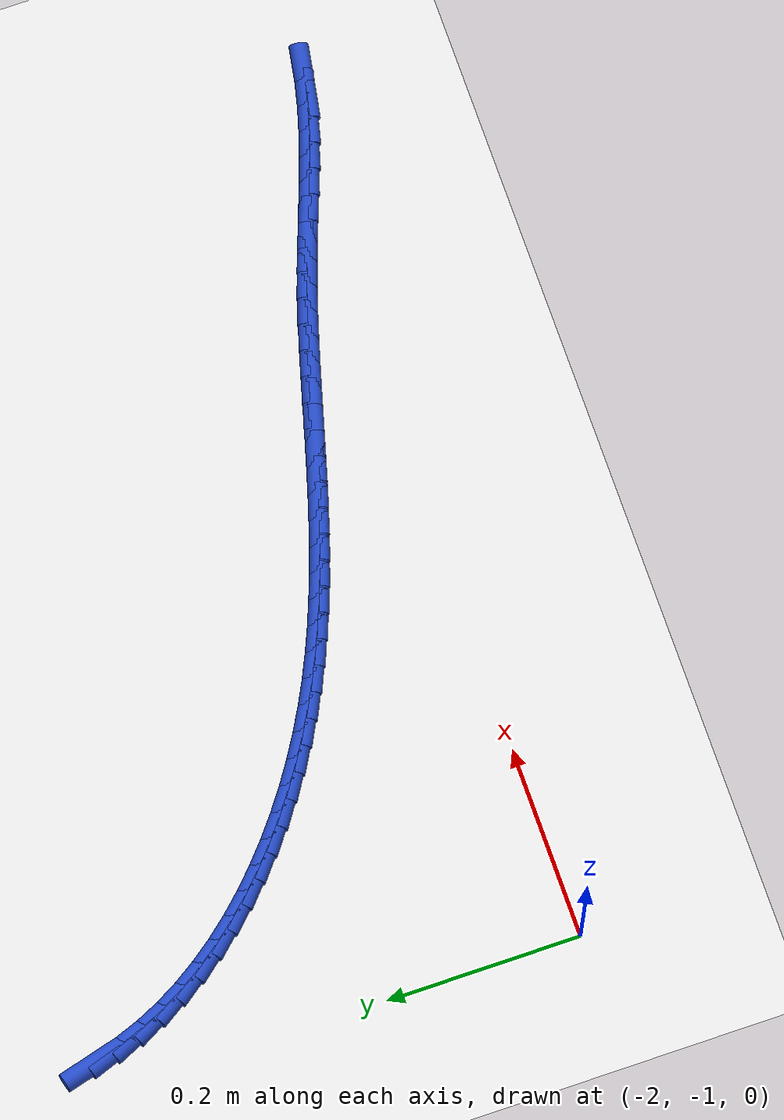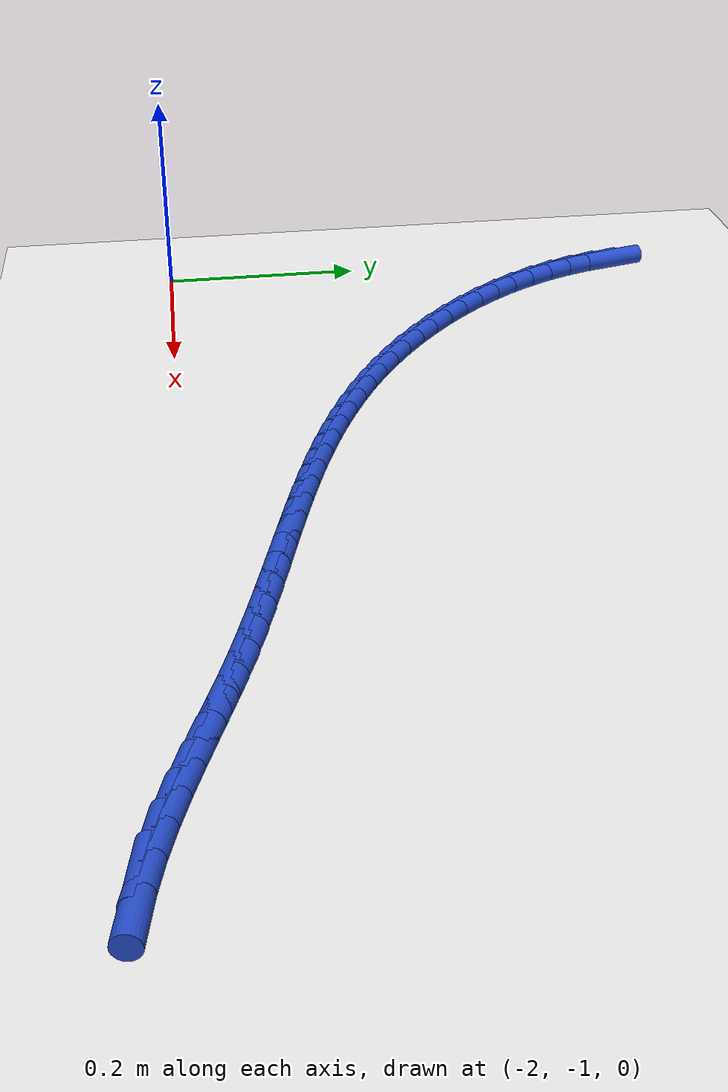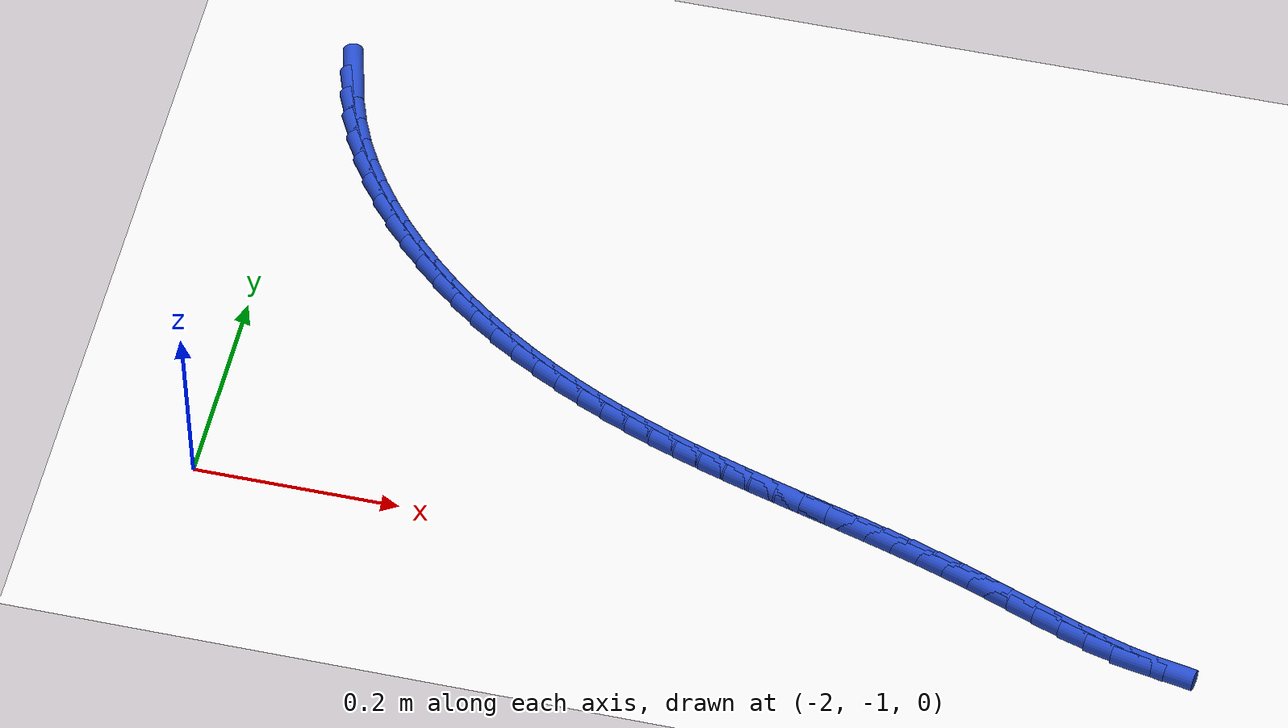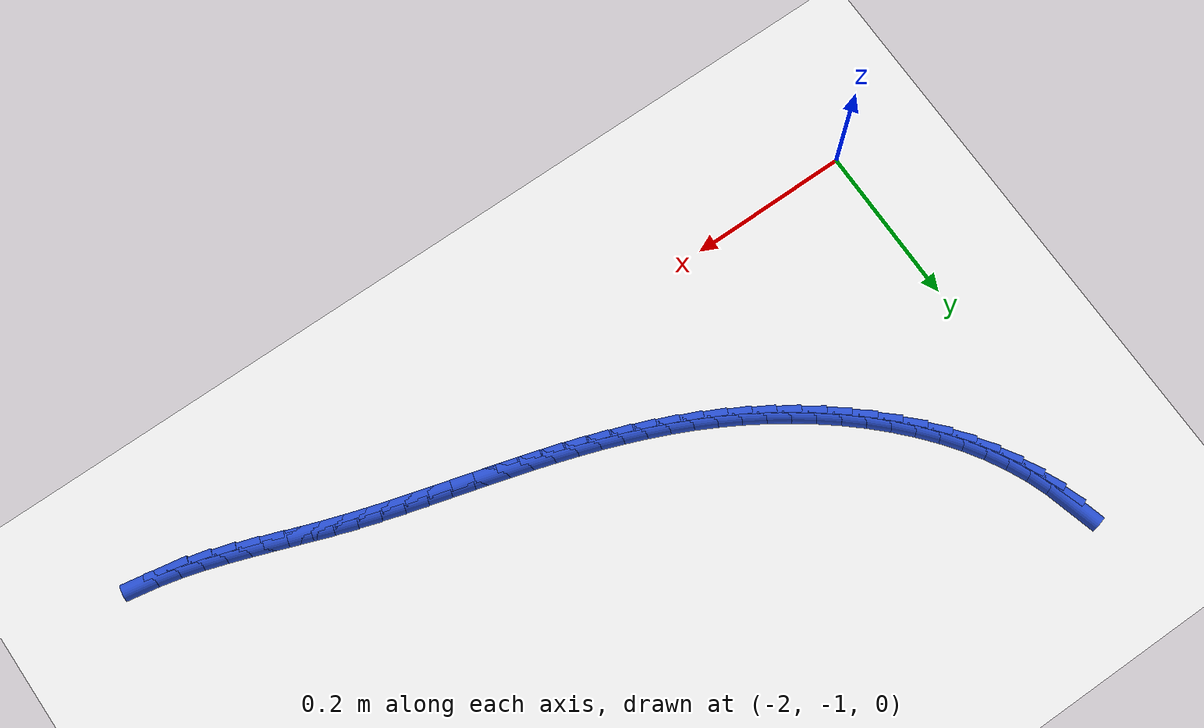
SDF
<sdf version="1.6">
 <world name="default">
  <model name="ground_plane">
   <static>1</static>
   <link name="link">
    <collision name="collision">
     <geometry><plane><normal>0 0 1</normal><size>100 100</size></plane></geometry>
     <surface><friction><ode><mu>100</mu><mu2>50</mu2></ode></friction></surface>
    </collision>
    <visual name="visual">
     <cast_shadows>0</cast_shadows>
     <geometry><plane><normal>0 0 1</normal><size>100 100</size></plane></geometry>
     <material>
      <script><uri>file://media/materials/scripts/gazebo.material</uri><name>Gazebo/WhiteGlow</name></script>
     </material>
    </visual>
   </link>
  </model>
  <model name="line">
   <link name="link_140">
    <pose>-1.9674209325380345 -0.515008755376572 0.01 0 1.57 -1.3063708469840316</pose>
    <collision name="collision">
     <geometry><cylinder><radius>0.01</radius><length>0.08</length></cylinder></geometry>
    </collision>
    <visual name="visual">
     <material>
      <script><name>Gazebo/Blue</name><uri>file://media/materials/scripts/gazebo.material</uri></script>
     </material>
     <geometry><cylinder><radius>0.01</radius><length>0.08</length></cylinder></geometry>
    </visual>
   </link>
   <link name="link_141">
    <pose>-1.9603900324412105 -0.540975475084127 0.01 0 1.57 -1.2208270939706312</pose>
    <collision name="collision">
     <geometry><cylinder><radius>0.01</radius><length>0.08</length></cylinder></geometry>
    </collision>
    <visual name="visual">
     <material>
      <script><name>Gazebo/Blue</name><uri>file://media/materials/scripts/gazebo.material</uri></script>
     </material>
     <geometry><cylinder><radius>0.01</radius><length>0.08</length></cylinder></geometry>
    </visual>
   </link>
   <link name="link_142">
    <pose>-1.9511354271165937 -0.5663310007790187 0.01 0 1.57 -1.1408854508331379</pose>
    <collision name="collision">
     <geometry><cylinder><radius>0.01</radius><length>0.08</length></cylinder></geometry>
    </collision>
    <visual name="visual">
     <material>
      <script><name>Gazebo/Blue</name><uri>file://media/materials/scripts/gazebo.material</uri></script>
     </material>
     <geometry><cylinder><radius>0.01</radius><length>0.08</length></cylinder></geometry>
    </visual>
   </link>
   <link name="link_143">
    <pose>-1.9398079997783715 -0.5910356949364673 0.01 0 1.57 -1.0666327543497391</pose>
    <collision name="collision">
     <geometry><cylinder><radius>0.01</radius><length>0.08</length></cylinder></geometry>
    </collision>
    <visual name="visual">
     <material>
      <script><name>Gazebo/Blue</name><uri>file://media/materials/scripts/gazebo.material</uri></script>
     </material>
     <geometry><cylinder><radius>0.01</radius><length>0.08</length></cylinder></geometry>
    </visual>
   </link>
   <link name="link_144">
    <pose>-1.926558834984058 -0.6150499417635348 0.01 0 1.57 -0.9978980034963214</pose>
    <collision name="collision">
     <geometry><cylinder><radius>0.01</radius><length>0.08</length></cylinder></geometry>
    </collision>
    <visual name="visual">
     <material>
      <script><name>Gazebo/Blue</name><uri>file://media/materials/scripts/gazebo.material</uri></script>
     </material>
     <geometry><cylinder><radius>0.01</radius><length>0.08</length></cylinder></geometry>
    </visual>
   </link>
   <link name="link_145">
    <pose>-1.9115390172911677 -0.6383341254672827 0.01 0 1.57 -0.9343389445839104</pose>
    <collision name="collision">
     <geometry><cylinder><radius>0.01</radius><length>0.08</length></cylinder></geometry>
    </collision>
    <visual name="visual">
     <material>
      <script><name>Gazebo/Blue</name><uri>file://media/materials/scripts/gazebo.material</uri></script>
     </material>
     <geometry><cylinder><radius>0.01</radius><length>0.08</length></cylinder></geometry>
    </visual>
   </link>
   <link name="link_146">
    <pose>-1.8948996312572135 -0.6608486302547731 0.01 0 1.57 -0.8755092071555863</pose>
    <collision name="collision">
     <geometry><cylinder><radius>0.01</radius><length>0.08</length></cylinder></geometry>
    </collision>
    <visual name="visual">
     <material>
      <script><name>Gazebo/Blue</name><uri>file://media/materials/scripts/gazebo.material</uri></script>
     </material>
     <geometry><cylinder><radius>0.01</radius><length>0.08</length></cylinder></geometry>
    </visual>
   </link>
   <link name="link_147">
    <pose>-1.8767917614397103 -0.6825538403330685 0.01 0 1.57 -0.8209089196723749</pose>
    <collision name="collision">
     <geometry><cylinder><radius>0.01</radius><length>0.08</length></cylinder></geometry>
    </collision>
    <visual name="visual">
     <material>
      <script><name>Gazebo/Blue</name><uri>file://media/materials/scripts/gazebo.material</uri></script>
     </material>
     <geometry><cylinder><radius>0.01</radius><length>0.08</length></cylinder></geometry>
    </visual>
   </link>
   <link name="link_148">
    <pose>-1.8573664923961717 -0.7034101399092291 0.01 0 1.57 -0.7700191905360007</pose>
    <collision name="collision">
     <geometry><cylinder><radius>0.01</radius><length>0.08</length></cylinder></geometry>
    </collision>
    <visual name="visual">
     <material>
      <script><name>Gazebo/Blue</name><uri>file://media/materials/scripts/gazebo.material</uri></script>
     </material>
     <geometry><cylinder><radius>0.01</radius><length>0.08</length></cylinder></geometry>
    </visual>
   </link>
   <link name="link_149">
    <pose>-1.8367749086841134 -0.723377913190318 0.01 0 1.57 -0.7223230963318215</pose>
    <collision name="collision">
     <geometry><cylinder><radius>0.01</radius><length>0.08</length></cylinder></geometry>
    </collision>
    <visual name="visual">
     <material>
      <script><name>Gazebo/Blue</name><uri>file://media/materials/scripts/gazebo.material</uri></script>
     </material>
     <geometry><cylinder><radius>0.01</radius><length>0.08</length></cylinder></geometry>
    </visual>
   </link>
   <link name="link_150">
    <pose>-1.8151680948610485 -0.7424175443833964 0.01 0 1.57 -0.6773163435724812</pose>
    <collision name="collision">
     <geometry><cylinder><radius>0.01</radius><length>0.08</length></cylinder></geometry>
    </collision>
    <visual name="visual">
     <material>
      <script><name>Gazebo/Blue</name><uri>file://media/materials/scripts/gazebo.material</uri></script>
     </material>
     <geometry><cylinder><radius>0.01</radius><length>0.08</length></cylinder></geometry>
    </visual>
   </link>
   <link name="link_151">
    <pose>-1.7926971354844905 -0.7604894176955267 0.01 0 1.57 -0.6345104086655626</pose>
    <collision name="collision">
     <geometry><cylinder><radius>0.01</radius><length>0.08</length></cylinder></geometry>
    </collision>
    <visual name="visual">
     <material>
      <script><name>Gazebo/Blue</name><uri>file://media/materials/scripts/gazebo.material</uri></script>
     </material>
     <geometry><cylinder><radius>0.01</radius><length>0.08</length></cylinder></geometry>
    </visual>
   </link>
   <link name="link_152">
    <pose>-1.7695131151119539 -0.7775539173337702 0.01 0 1.57 -0.593430269339871</pose>
    <collision name="collision">
     <geometry><cylinder><radius>0.01</radius><length>0.08</length></cylinder></geometry>
    </collision>
    <visual name="visual">
     <material>
      <script><name>Gazebo/Blue</name><uri>file://media/materials/scripts/gazebo.material</uri></script>
     </material>
     <geometry><cylinder><radius>0.01</radius><length>0.08</length></cylinder></geometry>
    </visual>
   </link>
   <link name="link_153">
    <pose>-1.7457671183009538 -0.793571427505189 0.01 0 1.57 -0.5536081060248251</pose>
    <collision name="collision">
     <geometry><cylinder><radius>0.01</radius><length>0.08</length></cylinder></geometry>
    </collision>
    <visual name="visual">
     <material>
      <script><name>Gazebo/Blue</name><uri>file://media/materials/scripts/gazebo.material</uri></script>
     </material>
     <geometry><cylinder><radius>0.01</radius><length>0.08</length></cylinder></geometry>
    </visual>
   </link>
   <link name="link_154">
    <pose>-1.7216102296090026 -0.8085023324168452 0.01 0 1.57 -0.5147163030865551</pose>
    <collision name="collision">
     <geometry><cylinder><radius>0.01</radius><length>0.08</length></cylinder></geometry>
    </collision>
    <visual name="visual">
     <material>
      <script><name>Gazebo/Blue</name><uri>file://media/materials/scripts/gazebo.material</uri></script>
     </material>
     <geometry><cylinder><radius>0.01</radius><length>0.08</length></cylinder></geometry>
    </visual>
   </link>
   <link name="link_155">
    <pose>-1.6971807260781224 -0.8223188556454566 0.01 0 1.57 -0.47754013468221845</pose>
    <collision name="collision">
     <geometry><cylinder><radius>0.01</radius><length>0.08</length></cylinder></geometry>
    </collision>
    <visual name="visual">
     <material>
      <script><name>Gazebo/Blue</name><uri>file://media/materials/scripts/gazebo.material</uri></script>
     </material>
     <geometry><cylinder><radius>0.01</radius><length>0.08</length></cylinder></geometry>
    </visual>
   </link>
   <link name="link_156">
    <pose>-1.6725256274605045 -0.835077579735625 0.01 0 1.57 -0.44276952599909347</pose>
    <collision name="collision">
     <geometry><cylinder><radius>0.01</radius><length>0.08</length></cylinder></geometry>
    </collision>
    <visual name="visual">
     <material>
      <script><name>Gazebo/Blue</name><uri>file://media/materials/scripts/gazebo.material</uri></script>
     </material>
     <geometry><cylinder><radius>0.01</radius><length>0.08</length></cylinder></geometry>
    </visual>
   </link>
   <link name="link_157">
    <pose>-1.64765234462874 -0.8468717019967346 0.01 0 1.57 -0.410686617232124</pose>
    <collision name="collision">
     <geometry><cylinder><radius>0.01</radius><length>0.08</length></cylinder></geometry>
    </collision>
    <visual name="visual">
     <material>
      <script><name>Gazebo/Blue</name><uri>file://media/materials/scripts/gazebo.material</uri></script>
     </material>
     <geometry><cylinder><radius>0.01</radius><length>0.08</length></cylinder></geometry>
    </visual>
   </link>
   <link name="link_158">
    <pose>-1.6225681277135902 -0.857794568329204 0.01 0 1.57 -0.3815217136249463</pose>
    <collision name="collision">
     <geometry><cylinder><radius>0.01</radius><length>0.08</length></cylinder></geometry>
    </collision>
    <visual name="visual">
     <material>
      <script><name>Gazebo/Blue</name><uri>file://media/materials/scripts/gazebo.material</uri></script>
     </material>
     <geometry><cylinder><radius>0.01</radius><length>0.08</length></cylinder></geometry>
    </visual>
   </link>
   <link name="link_159">
    <pose>-1.5972802268458148 -0.8679395246334524 0.01 0 1.57 -0.3554559471997208</pose>
    <collision name="collision">
     <geometry><cylinder><radius>0.01</radius><length>0.08</length></cylinder></geometry>
    </collision>
    <visual name="visual">
     <material>
      <script><name>Gazebo/Blue</name><uri>file://media/materials/scripts/gazebo.material</uri></script>
     </material>
     <geometry><cylinder><radius>0.01</radius><length>0.08</length></cylinder></geometry>
    </visual>
   </link>
   <link name="link_160">
    <pose>-1.5717958921561739 -0.8773999168098979 0.01 0 1.57 -0.3326245746374554</pose>
    <collision name="collision">
     <geometry><cylinder><radius>0.01</radius><length>0.08</length></cylinder></geometry>
    </collision>
    <visual name="visual">
     <material>
      <script><name>Gazebo/Blue</name><uri>file://media/materials/scripts/gazebo.material</uri></script>
     </material>
     <geometry><cylinder><radius>0.01</radius><length>0.08</length></cylinder></geometry>
    </visual>
   </link>
   <link name="link_161">
    <pose>-1.5461223737754284 -0.88626909075896 0.01 0 1.57 -0.31312199776702154</pose>
    <collision name="collision">
     <geometry><cylinder><radius>0.01</radius><length>0.08</length></cylinder></geometry>
    </collision>
    <visual name="visual">
     <material>
      <script><name>Gazebo/Blue</name><uri>file://media/materials/scripts/gazebo.material</uri></script>
     </material>
     <geometry><cylinder><radius>0.01</radius><length>0.08</length></cylinder></geometry>
    </visual>
   </link>
   <link name="link_162">
    <pose>-1.5202669281723165 -0.8946403938946901 0.01 0 1.57 -0.2971245980163138</pose>
    <collision name="collision">
     <geometry><cylinder><radius>0.01</radius><length>0.08</length></cylinder></geometry>
    </collision>
    <visual name="visual">
     <material>
      <script><name>Gazebo/Blue</name><uri>file://media/materials/scripts/gazebo.material</uri></script>
     </material>
     <geometry><cylinder><radius>0.01</radius><length>0.08</length></cylinder></geometry>
    </visual>
   </link>
   <link name="link_163">
    <pose>-1.4942429445833614 -0.9026086382552404 0.01 0 1.57 -0.28498237764189627</pose>
    <collision name="collision">
     <geometry><cylinder><radius>0.01</radius><length>0.08</length></cylinder></geometry>
    </collision>
    <visual name="visual">
     <material>
      <script><name>Gazebo/Blue</name><uri>file://media/materials/scripts/gazebo.material</uri></script>
     </material>
     <geometry><cylinder><radius>0.01</radius><length>0.08</length></cylinder></geometry>
    </visual>
   </link>
   <link name="link_164">
    <pose>-1.4680813920624796 -0.9102728342807229 0.01 0 1.57 -0.2767365631644124</pose>
    <collision name="collision">
     <geometry><cylinder><radius>0.01</radius><length>0.08</length></cylinder></geometry>
    </collision>
    <visual name="visual">
     <material>
      <script><name>Gazebo/Blue</name><uri>file://media/materials/scripts/gazebo.material</uri></script>
     </material>
     <geometry><cylinder><radius>0.01</radius><length>0.08</length></cylinder></geometry>
    </visual>
   </link>
   <link name="link_165">
    <pose>-1.4418163698743047 -0.9177327399663856 0.01 0 1.57 -0.27236572752948535</pose>
    <collision name="collision">
     <geometry><cylinder><radius>0.01</radius><length>0.08</length></cylinder></geometry>
    </collision>
    <visual name="visual">
     <material>
      <script><name>Gazebo/Blue</name><uri>file://media/materials/scripts/gazebo.material</uri></script>
     </material>
     <geometry><cylinder><radius>0.01</radius><length>0.08</length></cylinder></geometry>
    </visual>
   </link>
   <link name="link_166">
    <pose>-1.4154819772834704 -0.9250881133074768 0.01 0 1.57 -0.2718511460047591</pose>
    <collision name="collision">
     <geometry><cylinder><radius>0.01</radius><length>0.08</length></cylinder></geometry>
    </collision>
    <visual name="visual">
     <material>
      <script><name>Gazebo/Blue</name><uri>file://media/materials/scripts/gazebo.material</uri></script>
     </material>
     <geometry><cylinder><radius>0.01</radius><length>0.08</length></cylinder></geometry>
    </visual>
   </link>
   <link name="link_167">
    <pose>-1.38911231355461 -0.9324387122992445 0.01 0 1.57 -0.2751787003762073</pose>
    <collision name="collision">
     <geometry><cylinder><radius>0.01</radius><length>0.08</length></cylinder></geometry>
    </collision>
    <visual name="visual">
     <material>
      <script><name>Gazebo/Blue</name><uri>file://media/materials/scripts/gazebo.material</uri></script>
     </material>
     <geometry><cylinder><radius>0.01</radius><length>0.08</length></cylinder></geometry>
    </visual>
   </link>
   <link name="link_168">
    <pose>-1.3627414779523563 -0.9398842949369366 0.01 0 1.57 -0.28233905433194484</pose>
    <collision name="collision">
     <geometry><cylinder><radius>0.01</radius><length>0.08</length></cylinder></geometry>
    </collision>
    <visual name="visual">
     <material>
      <script><name>Gazebo/Blue</name><uri>file://media/materials/scripts/gazebo.material</uri></script>
     </material>
     <geometry><cylinder><radius>0.01</radius><length>0.08</length></cylinder></geometry>
    </visual>
   </link>
   <link name="link_169">
    <pose>-1.3364035697413428 -0.9475246192158014 0.01 0 1.57 -0.2933261453502527</pose>
    <collision name="collision">
     <geometry><cylinder><radius>0.01</radius><length>0.08</length></cylinder></geometry>
    </collision>
    <visual name="visual">
     <material>
      <script><name>Gazebo/Blue</name><uri>file://media/materials/scripts/gazebo.material</uri></script>
     </material>
     <geometry><cylinder><radius>0.01</radius><length>0.08</length></cylinder></geometry>
    </visual>
   </link>
   <link name="link_170">
    <pose>-1.3101326881862019 -0.955459443131087 0.01 0 1.57 -0.30813401365435905</pose>
    <collision name="collision">
     <geometry><cylinder><radius>0.01</radius><length>0.08</length></cylinder></geometry>
    </collision>
    <visual name="visual">
     <material>
      <script><name>Gazebo/Blue</name><uri>file://media/materials/scripts/gazebo.material</uri></script>
     </material>
     <geometry><cylinder><radius>0.01</radius><length>0.08</length></cylinder></geometry>
    </visual>
   </link>
   <link name="link_171">
    <pose>-1.2839629325515691 -0.9637885246780413 0.01 0 1.57 -0.32673571909421667</pose>
    <collision name="collision">
     <geometry><cylinder><radius>0.01</radius><length>0.08</length></cylinder></geometry>
    </collision>
    <visual name="visual">
     <material>
      <script><name>Gazebo/Blue</name><uri>file://media/materials/scripts/gazebo.material</uri></script>
     </material>
     <geometry><cylinder><radius>0.01</radius><length>0.08</length></cylinder></geometry>
    </visual>
   </link>
   <link name="link_172">
    <pose>-1.2579282830634535 -0.9726111901997989 0.01 0 1.57 -0.3450696428846093</pose>
    <collision name="collision">
     <geometry><cylinder><radius>0.01</radius><length>0.08</length></cylinder></geometry>
    </collision>
    <visual name="visual">
     <material>
      <script><name>Gazebo/Blue</name><uri>file://media/materials/scripts/gazebo.material</uri></script>
     </material>
     <geometry><cylinder><radius>0.01</radius><length>0.08</length></cylinder></geometry>
    </visual>
   </link>
   <link name="link_173">
    <pose>-1.2320330710744811 -0.9819192547248321 0.01 0 1.57 -0.3538232523636295</pose>
    <collision name="collision">
     <geometry><cylinder><radius>0.01</radius><length>0.08</length></cylinder></geometry>
    </collision>
    <visual name="visual">
     <material>
      <script><name>Gazebo/Blue</name><uri>file://media/materials/scripts/gazebo.material</uri></script>
     </material>
     <geometry><cylinder><radius>0.01</radius><length>0.08</length></cylinder></geometry>
    </visual>
   </link>
   <link name="link_174">
    <pose>-1.2062131665759106 -0.9914562819949945 0.01 0 1.57 -0.35171427480080814</pose>
    <collision name="collision">
     <geometry><cylinder><radius>0.01</radius><length>0.08</length></cylinder></geometry>
    </collision>
    <visual name="visual">
     <material>
      <script><name>Gazebo/Blue</name><uri>file://media/materials/scripts/gazebo.material</uri></script>
     </material>
     <geometry><cylinder><radius>0.01</radius><length>0.08</length></cylinder></geometry>
    </visual>
   </link>
   <link name="link_175">
    <pose>-1.1803948072365893 -1.0009309074891937 0.01 0 1.57 -0.33870891443709666</pose>
    <collision name="collision">
     <geometry><cylinder><radius>0.01</radius><length>0.08</length></cylinder></geometry>
    </collision>
    <visual name="visual">
     <material>
      <script><name>Gazebo/Blue</name><uri>file://media/materials/scripts/gazebo.material</uri></script>
     </material>
     <geometry><cylinder><radius>0.01</radius><length>0.08</length></cylinder></geometry>
    </visual>
   </link>
   <link name="link_176">
    <pose>-1.1545042307253641 -1.0100517666863358 0.01 0 1.57 -0.31471286857504865</pose>
    <collision name="collision">
     <geometry><cylinder><radius>0.01</radius><length>0.08</length></cylinder></geometry>
    </collision>
    <visual name="visual">
     <material>
      <script><name>Gazebo/Blue</name><uri>file://media/materials/scripts/gazebo.material</uri></script>
     </material>
     <geometry><cylinder><radius>0.01</radius><length>0.08</length></cylinder></geometry>
    </visual>
   </link>
   <link name="link_177">
    <pose>-1.128467674711082 -1.018527495065329 0.01 0 1.57 -0.2796172638142796</pose>
    <collision name="collision">
     <geometry><cylinder><radius>0.01</radius><length>0.08</length></cylinder></geometry>
    </collision>
    <visual name="visual">
     <material>
      <script><name>Gazebo/Blue</name><uri>file://media/materials/scripts/gazebo.material</uri></script>
     </material>
     <geometry><cylinder><radius>0.01</radius><length>0.08</length></cylinder></geometry>
    </visual>
   </link>
   <link name="link_178">
    <pose>-1.102211376862592 -1.0260667281050793 0.01 0 1.57 -0.23338641236369836</pose>
    <collision name="collision">
     <geometry><cylinder><radius>0.01</radius><length>0.08</length></cylinder></geometry>
    </collision>
    <visual name="visual">
     <material>
      <script><name>Gazebo/Blue</name><uri>file://media/materials/scripts/gazebo.material</uri></script>
     </material>
     <geometry><cylinder><radius>0.01</radius><length>0.08</length></cylinder></geometry>
    </visual>
   </link>
   <link name="link_179">
    <pose>-1.0756615748487401 -1.032378101284495 0.01 0 1.57 -0.1761878220844894</pose>
    <collision name="collision">
     <geometry><cylinder><radius>0.01</radius><length>0.08</length></cylinder></geometry>
    </collision>
    <visual name="visual">
     <material>
      <script><name>Gazebo/Blue</name><uri>file://media/materials/scripts/gazebo.material</uri></script>
     </material>
     <geometry><cylinder><radius>0.01</radius><length>0.08</length></cylinder></geometry>
    </visual>
   </link>
  </model>
 </world>
</sdf>
